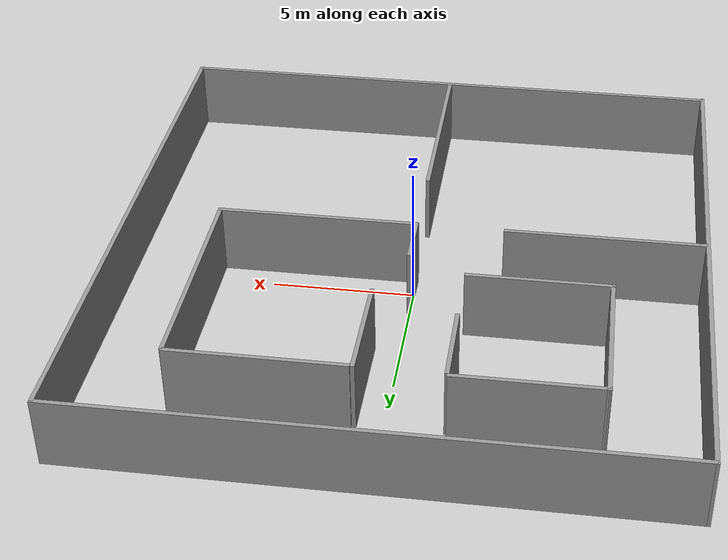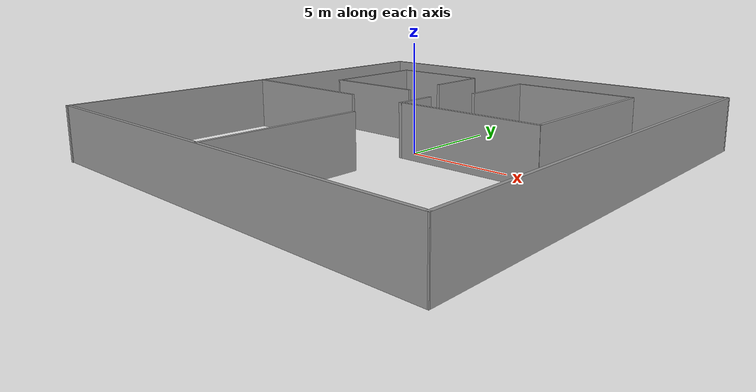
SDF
<?xml version='1.0'?>
<sdf version='1.7'>
  <model name='test_density'>
    <pose>0.070977 -0.497117 0 0 -0 0</pose>
    <link name='Wall_10'>
      <collision name='Wall_10_Collision'>
        <geometry>
          <box>
            <size>3 0.15 2.5</size>
          </box>
        </geometry>
        <pose>0 0 1.25 0 -0 0</pose>
      </collision>
      <visual name='Wall_10_Visual'>
        <pose>0 0 1.25 0 -0 0</pose>
        <geometry>
          <box>
            <size>3 0.15 2.5</size>
          </box>
        </geometry>
        <material>
          <script>
            <uri>file://media/materials/scripts/gazebo.material</uri>
            <name>Gazebo/Grey</name>
          </script>
          <ambient>1 1 1 1</ambient>
        </material>
        <meta>
          <layer>0</layer>
        </meta>
      </visual>
      <pose>-2.04716 6.04437 0 0 -0 -1.5708</pose>
    </link>
    <link name='Wall_19'>
      <collision name='Wall_19_Collision'>
        <geometry>
          <box>
            <size>6 0.15 2.5</size>
          </box>
        </geometry>
        <pose>0 0 1.25 0 -0 0</pose>
      </collision>
      <visual name='Wall_19_Visual'>
        <pose>0 0 1.25 0 -0 0</pose>
        <geometry>
          <box>
            <size>6 0.15 2.5</size>
          </box>
        </geometry>
        <material>
          <script>
            <uri>file://media/materials/scripts/gazebo.material</uri>
            <name>Gazebo/Grey</name>
          </script>
          <ambient>1 1 1 1</ambient>
        </material>
        <meta>
          <layer>0</layer>
        </meta>
      </visual>
      <pose>3.95812 7.54759 0 0 -0 0</pose>
    </link>
    <link name='Wall_21'>
      <collision name='Wall_21_Collision'>
        <geometry>
          <box>
            <size>7 0.15 2.5</size>
          </box>
        </geometry>
        <pose>0 0 1.25 0 -0 0</pose>
      </collision>
      <visual name='Wall_21_Visual'>
        <pose>0 0 1.25 0 -0 0</pose>
        <geometry>
          <box>
            <size>7 0.15 2.5</size>
          </box>
        </geometry>
        <material>
          <script>
            <uri>file://media/materials/scripts/gazebo.material</uri>
            <name>Gazebo/Grey</name>
          </script>
          <ambient>1 1 1 1</ambient>
        </material>
        <meta>
          <layer>0</layer>
        </meta>
      </visual>
      <pose>3.48728 -0.356985 0 0 -0 0</pose>
    </link>
    <link name='Wall_22'>
      <collision name='Wall_22_Collision'>
        <geometry>
          <box>
            <size>7.96502 0.15 2.5</size>
          </box>
        </geometry>
        <pose>0 0 1.25 0 -0 0</pose>
      </collision>
      <visual name='Wall_22_Visual'>
        <pose>0 0 1.25 0 -0 0</pose>
        <geometry>
          <box>
            <size>7.96502 0.15 2.5</size>
          </box>
        </geometry>
        <material>
          <script>
            <uri>file://media/materials/scripts/gazebo.material</uri>
            <name>Gazebo/Grey</name>
          </script>
          <ambient>1 1 1 1</ambient>
        </material>
        <meta>
          <layer>0</layer>
        </meta>
      </visual>
      <pose>6.91228 3.56801 0 0 -0 1.5708</pose>
    </link>
    <link name='Wall_24'>
      <collision name='Wall_24_Collision'>
        <geometry>
          <box>
            <size>7.25 0.15 2.5</size>
          </box>
        </geometry>
        <pose>0 0 1.25 0 -0 0</pose>
      </collision>
      <visual name='Wall_24_Visual'>
        <pose>0 0 1.25 0 -0 0</pose>
        <geometry>
          <box>
            <size>7.25 0.15 2.5</size>
          </box>
        </geometry>
        <material>
          <script>
            <uri>file://media/materials/scripts/gazebo.material</uri>
            <name>Gazebo/Grey</name>
          </script>
          <ambient>1 1 1 1</ambient>
        </material>
        <meta>
          <layer>0</layer>
        </meta>
      </visual>
      <pose>-0.116659 -6.77378 0 0 -0 -1.5708</pose>
    </link>
    <link name='Wall_3'>
      <collision name='Wall_3_Collision'>
        <geometry>
          <box>
            <size>5.3733 0.15 2.5</size>
          </box>
        </geometry>
        <pose>0 0 1.25 0 -0 0</pose>
      </collision>
      <visual name='Wall_3_Visual'>
        <pose>0 0 1.25 0 -0 0</pose>
        <geometry>
          <box>
            <size>5.3733 0.15 2.5</size>
          </box>
        </geometry>
        <material>
          <script>
            <uri>file://media/materials/scripts/gazebo.material</uri>
            <name>Gazebo/Grey</name>
          </script>
          <ambient>1 1 1 1</ambient>
        </material>
        <meta>
          <layer>0</layer>
        </meta>
      </visual>
      <pose>-6.97665 4.9975 0 0 -0 -1.56475</pose>
    </link>
    <link name='Wall_32'>
      <collision name='Wall_32_Collision'>
        <geometry>
          <box>
            <size>2 0.15 2.5</size>
          </box>
        </geometry>
        <pose>0 0 1.25 0 -0 0</pose>
      </collision>
      <visual name='Wall_32_Visual'>
        <pose>0 0 1.25 0 -0 0</pose>
        <geometry>
          <box>
            <size>2 0.15 2.5</size>
          </box>
        </geometry>
        <material>
          <script>
            <uri>file://media/materials/scripts/gazebo.material</uri>
            <name>Gazebo/Grey</name>
          </script>
          <ambient>1 1 1 1</ambient>
        </material>
        <meta>
          <layer>0</layer>
        </meta>
      </visual>
      <pose>-0.068007 0.565322 0 0 -0 1.5708</pose>
    </link>
    <link name='Wall_35'>
      <collision name='Wall_35_Collision'>
        <geometry>
          <box>
            <size>4 0.15 2.5</size>
          </box>
        </geometry>
        <pose>0 0 1.25 0 -0 0</pose>
      </collision>
      <visual name='Wall_35_Visual'>
        <pose>0 0 1.25 0 -0 0</pose>
        <geometry>
          <box>
            <size>4 0.15 2.5</size>
          </box>
        </geometry>
        <material>
          <script>
            <uri>file://media/materials/scripts/gazebo.material</uri>
            <name>Gazebo/Grey</name>
          </script>
          <ambient>1 1 1 1</ambient>
        </material>
        <meta>
          <layer>0</layer>
        </meta>
      </visual>
      <pose>0.877836 5.59376 0 0 -0 1.5708</pose>
    </link>
    <link name='Wall_37'>
      <collision name='Wall_37_Collision'>
        <geometry>
          <box>
            <size>20.25 0.15 2.5</size>
          </box>
        </geometry>
        <pose>0 0 1.25 0 -0 0</pose>
      </collision>
      <visual name='Wall_37_Visual'>
        <pose>0 0 1.25 0 -0 0</pose>
        <geometry>
          <box>
            <size>20.25 0.15 2.5</size>
          </box>
        </geometry>
        <material>
          <script>
            <uri>file://media/materials/scripts/gazebo.material</uri>
            <name>Gazebo/Grey</name>
          </script>
          <ambient>1 1 1 1</ambient>
        </material>
        <meta>
          <layer>0</layer>
        </meta>
      </visual>
      <pose>0.024708 -10.3975 0 0 -0 0</pose>
    </link>
    <link name='Wall_38'>
      <collision name='Wall_38_Collision'>
        <geometry>
          <box>
            <size>20.9157 0.15 2.5</size>
          </box>
        </geometry>
        <pose>0 0 1.25 0 -0 0</pose>
      </collision>
      <visual name='Wall_38_Visual'>
        <pose>0 0 1.25 0 -0 0</pose>
        <geometry>
          <box>
            <size>20.9157 0.15 2.5</size>
          </box>
        </geometry>
        <material>
          <script>
            <uri>file://media/materials/scripts/gazebo.material</uri>
            <name>Gazebo/Grey</name>
          </script>
          <ambient>1 1 1 1</ambient>
        </material>
        <meta>
          <layer>0</layer>
        </meta>
      </visual>
      <pose>10.093 -0.01463 0 0 -0 1.56904</pose>
    </link>
    <link name='Wall_39'>
      <collision name='Wall_39_Collision'>
        <geometry>
          <box>
            <size>20.3726 0.15 2.5</size>
          </box>
        </geometry>
        <pose>0 0 1.25 0 -0 0</pose>
      </collision>
      <visual name='Wall_39_Visual'>
        <pose>0 0 1.25 0 -0 0</pose>
        <geometry>
          <box>
            <size>20.3726 0.15 2.5</size>
          </box>
        </geometry>
        <material>
          <script>
            <uri>file://media/materials/scripts/gazebo.material</uri>
            <name>Gazebo/Grey</name>
          </script>
          <ambient>1 1 1 1</ambient>
        </material>
        <meta>
          <layer>0</layer>
        </meta>
      </visual>
      <pose>-4.8e-05 10.425 0 0 -0 -3.14112</pose>
    </link>
    <link name='Wall_4'>
      <collision name='Wall_4_Collision'>
        <geometry>
          <box>
            <size>5 0.15 2.5</size>
          </box>
        </geometry>
        <pose>0 0 1.25 0 -0 0</pose>
      </collision>
      <visual name='Wall_4_Visual'>
        <pose>0 0 1.25 0 -0 0</pose>
        <geometry>
          <box>
            <size>5 0.15 2.5</size>
          </box>
        </geometry>
        <material>
          <script>
            <uri>file://media/materials/scripts/gazebo.material</uri>
            <name>Gazebo/Grey</name>
          </script>
          <ambient>1 1 1 1</ambient>
        </material>
        <meta>
          <layer>0</layer>
        </meta>
      </visual>
      <pose>-4.53585 2.3859 0 0 -0 0</pose>
    </link>
    <link name='Wall_40'>
      <collision name='Wall_40_Collision'>
        <geometry>
          <box>
            <size>21 0.15 2.5</size>
          </box>
        </geometry>
        <pose>0 0 1.25 0 -0 0</pose>
      </collision>
      <visual name='Wall_40_Visual'>
        <pose>0 0 1.25 0 -0 0</pose>
        <geometry>
          <box>
            <size>21 0.15 2.5</size>
          </box>
        </geometry>
        <material>
          <script>
            <uri>file://media/materials/scripts/gazebo.material</uri>
            <name>Gazebo/Grey</name>
          </script>
          <ambient>1 1 1 1</ambient>
        </material>
        <meta>
          <layer>0</layer>
        </meta>
      </visual>
      <pose>-10.1114 -0.004764 0 0 -0 -1.5708</pose>
    </link>
    <link name='Wall_42'>
      <collision name='Wall_42_Collision'>
        <geometry>
          <box>
            <size>7 0.15 2.5</size>
          </box>
        </geometry>
        <pose>0 0 1.25 0 -0 0</pose>
      </collision>
      <visual name='Wall_42_Visual'>
        <pose>0 0 1.25 0 -0 0</pose>
        <geometry>
          <box>
            <size>7 0.15 2.5</size>
          </box>
        </geometry>
        <material>
          <script>
            <uri>file://media/materials/scripts/gazebo.material</uri>
            <name>Gazebo/Grey</name>
          </script>
          <ambient>1 1 1 1</ambient>
        </material>
        <meta>
          <layer>0</layer>
        </meta>
      </visual>
      <pose>-6.62417 -0.35352 0 0 -0 3.14159</pose>
    </link>
    <link name='Wall_6'>
      <collision name='Wall_6_Collision'>
        <geometry>
          <box>
            <size>5 0.15 2.5</size>
          </box>
        </geometry>
        <pose>0 0 1.25 0 -0 0</pose>
      </collision>
      <visual name='Wall_6_Visual'>
        <pose>0 0 1.25 0 -0 0</pose>
        <geometry>
          <box>
            <size>5 0.15 2.5</size>
          </box>
        </geometry>
        <material>
          <script>
            <uri>file://media/materials/scripts/gazebo.material</uri>
            <name>Gazebo/Grey</name>
          </script>
          <ambient>1 1 1 1</ambient>
        </material>
        <meta>
          <layer>0</layer>
        </meta>
      </visual>
      <pose>-4.55224 7.6091 0 0 -0 0</pose>
    </link>
    <static>1</static>
  </model>
</sdf>
